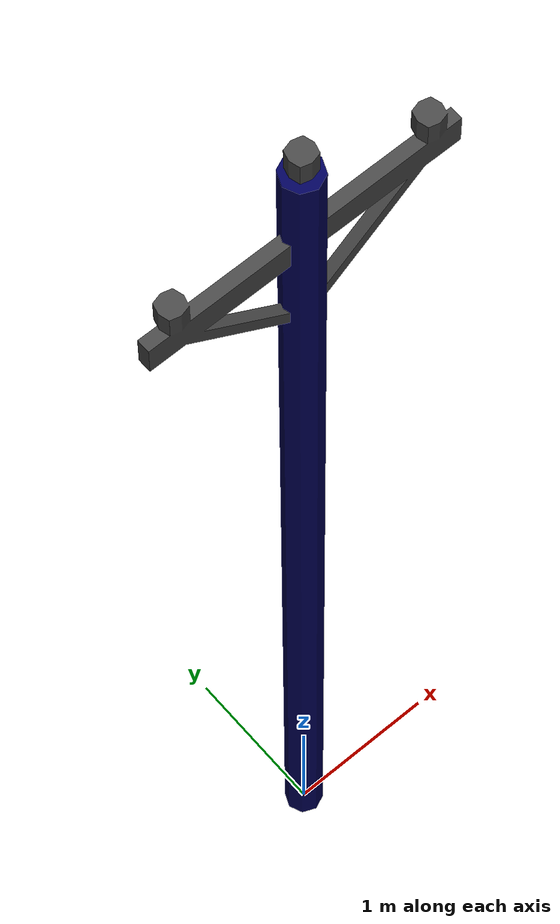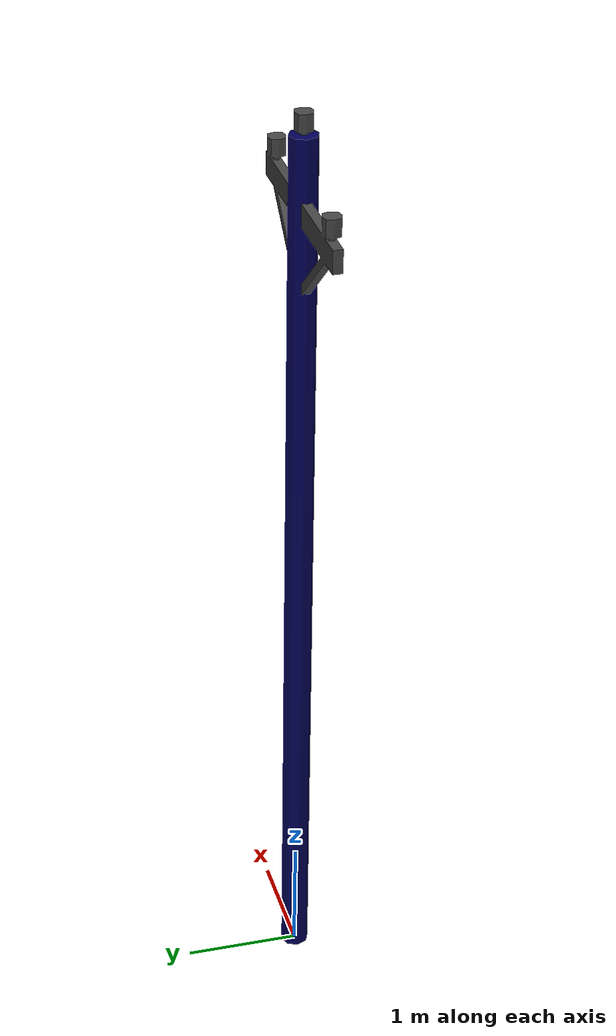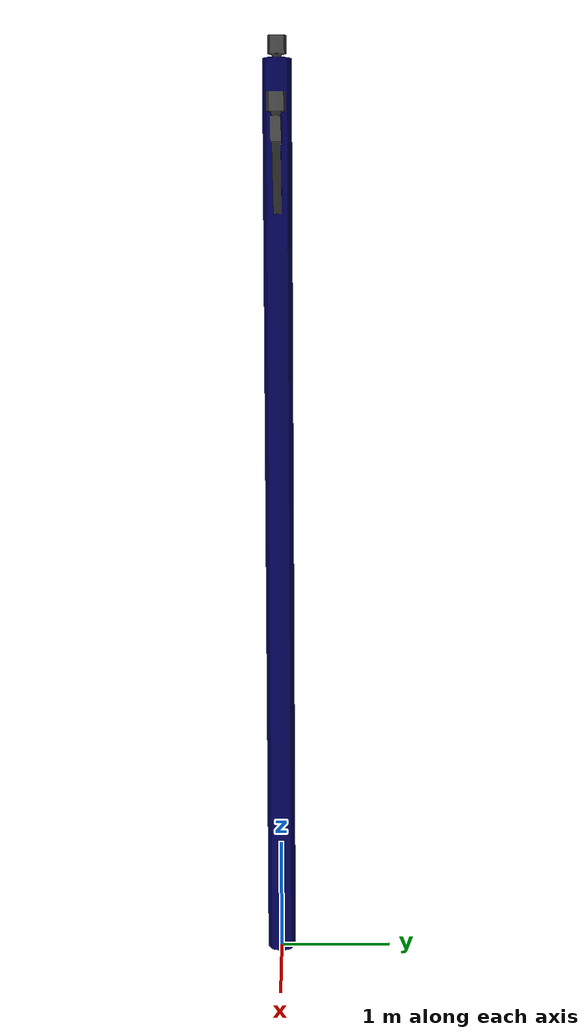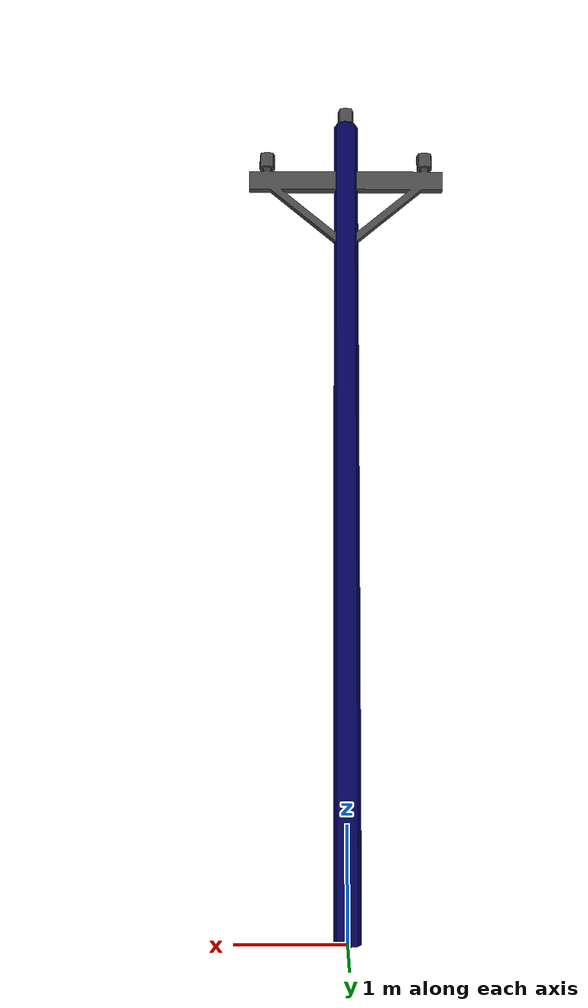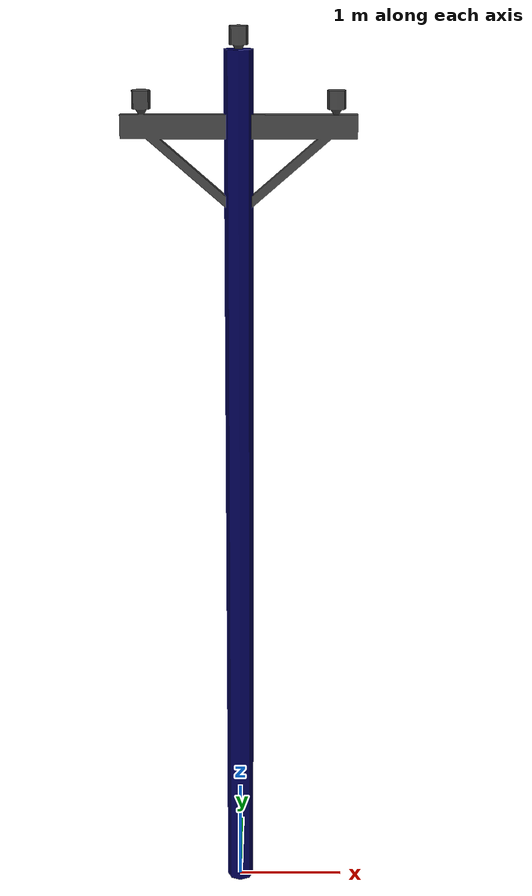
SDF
<?xml version="1.0"?>
<sdf version="1.5">
  <model name="bluepylon_model">
    <static>
      true
    </static>
    <link name="bluepylon_link">
      <inertial>
        <mass>0.390</mass>
        <inertia>
          <ixx>0.00058</ixx>
          <ixy>0</ixy>
          <ixz>0</ixz>
          <iyy>0.00058</iyy>
          <iyz>0</iyz>
          <izz>0.00019</izz>
        </inertia>
      </inertial>
      <visual name="bluepylon_visual">
        <geometry>
          <mesh>
            <uri>model://bluepylon/meshes/bluepylon.dae</uri>
          </mesh>
        </geometry>
      </visual>
    </link>
  </model>
</sdf>
